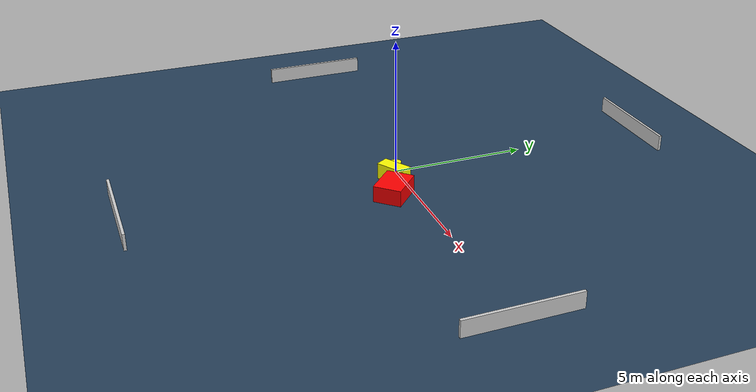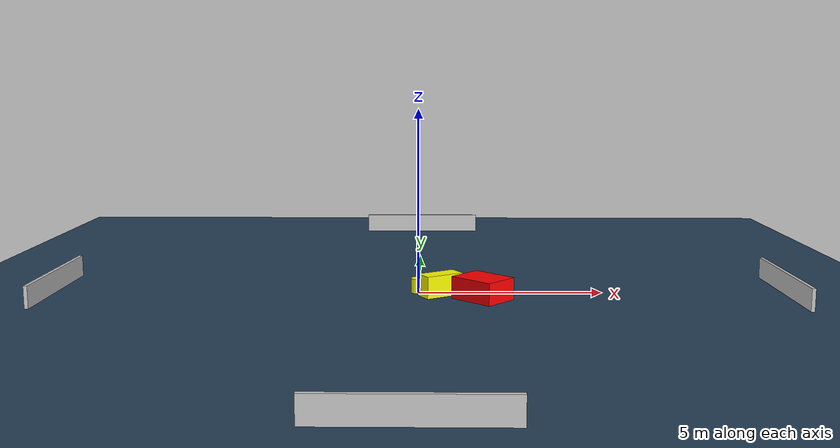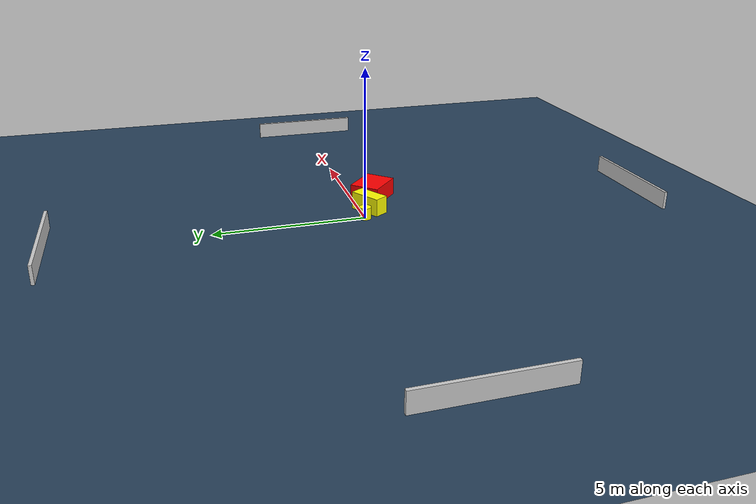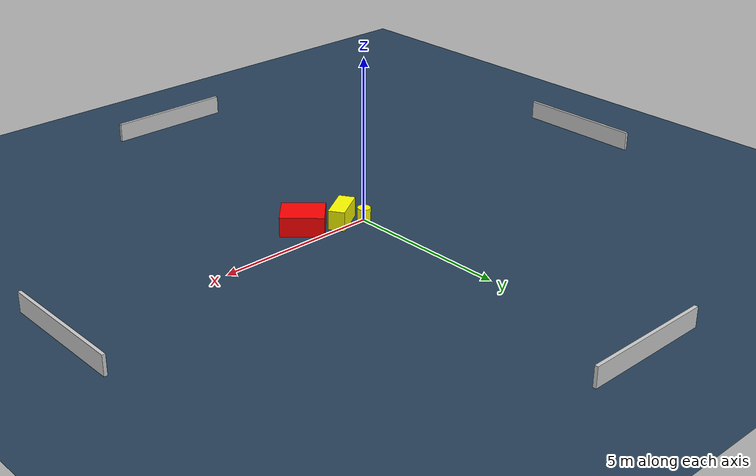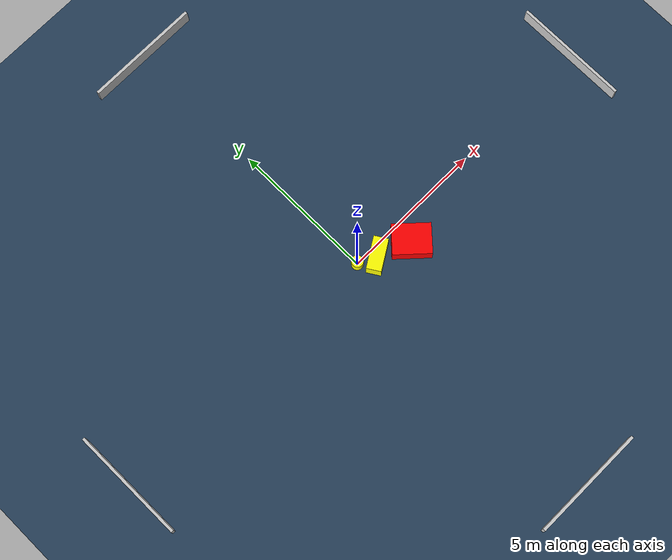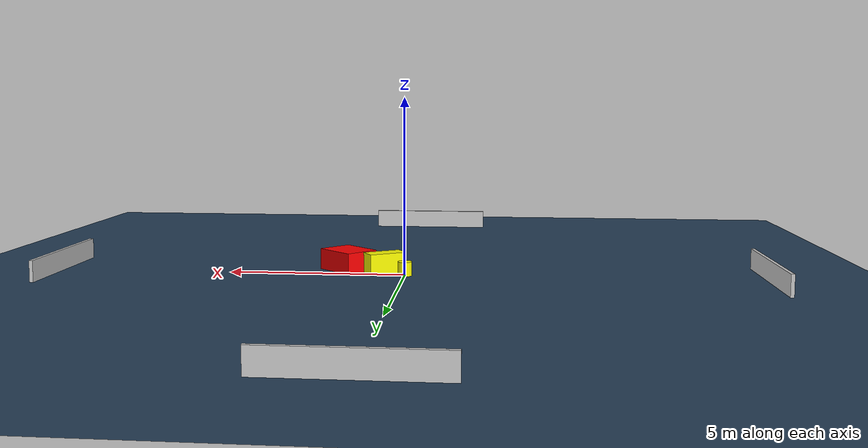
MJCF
<?xml version="1.0" ?>
<mujoco model="generated_environment">
  <option timestep="0.01" integrator="RK4" cone="elliptic"/>
  <default>
    <geom density="1"/>
  </default>
  <asset>
    <texture builtin="gradient" height="3072" name="skybox" rgb1="0.3 0.5 0.7" rgb2="0 0 0" type="skybox" width="512"/>
    <texture builtin="checker" height="300" name="groundplane" rgb1="0.2 0.3 0.4" rgb2="0.1 0.2 0.3" type="2d" width="300"/>
    <material name="groundplane" reflectance="0.2" texrepeat="5 5" texture="groundplane"/>
  </asset>
  <worldbody>
    <light dir="0 0 -1" directional="true" pos="0 0 1.5"/>
    <geom condim="3" friction="0.5 0.005 0.001" material="groundplane" name="floor" pos="0 0 0" size="0 0 0.05" type="plane"/>
    <body name="walls">
      <geom name="wall_1" condim="4" pos="-10.0 0.0 0.3" rgba="0.800000011920929 0.800000011920929 0.800000011920929 1.0" size="0.05 2.0 0.3" type="box"/>
      <geom name="wall_2" condim="4" pos="10.0 0.0 0.3" rgba="0.800000011920929 0.800000011920929 0.800000011920929 1.0" size="0.05 2.0 0.3" type="box"/>
      <geom name="wall_3" condim="4" pos="0.0 -10.0 0.3" rgba="0.800000011920929 0.800000011920929 0.800000011920929 1.0" size="2.0 0.05 0.3" type="box"/>
      <geom name="wall_4" condim="4" pos="0.0 10.0 0.3" rgba="0.800000011920929 0.800000011920929 0.800000011920929 1.0" size="2.0 0.05 0.3" type="box"/>
    </body>
    <body name="robot">
      <joint name="joint_x" type="slide" pos="0 0 0" axis="1 0 0"/>
      <joint name="joint_y" type="slide" pos="0 0 0" axis="0 1 0"/>
      <geom name="robot" type="cylinder" pos="0.0 0.0 0.2" size="0.2 0.2 0.0" mass="5.0" friction="1.0 0.005 0.0001" condim="4" rgba="1.0 1.0 0.0 1.0"/>
    </body>
    <body name="obstacle_1_movable">
      <geom name="obstacle_1_movable" condim="4" pos="0.5970755441528977 -0.3075098156991718 0.3" euler="0 0 31.89582860525205" friction="0.0 0.005 0.001" rgba="1.0 1.0 0.0 1.0" size="0.5538101904898517 0.24935977799666872 0.3" type="box" mass="0.1"/>
      <joint type="free"/>
    </body>
    <body name="obstacle_2_static">
      <geom name="obstacle_2_static" condim="4" pos="1.7193286746954466 -0.7405619282981662 0.3" euler="0 0 47.02639788459931" friction="0.0 0.005 0.001" rgba="1.0 0.0 0.0 1.0" size="0.5126227931135838 0.6493430530846113 0.3" type="box"/>
    </body>
  </worldbody>
  <actuator>
    <motor name="actuator_x" joint="joint_x" gear="1" ctrlrange="-1 1"/>
    <motor name="actuator_y" joint="joint_y" gear="1" ctrlrange="-1 1"/>
  </actuator>
</mujoco>
